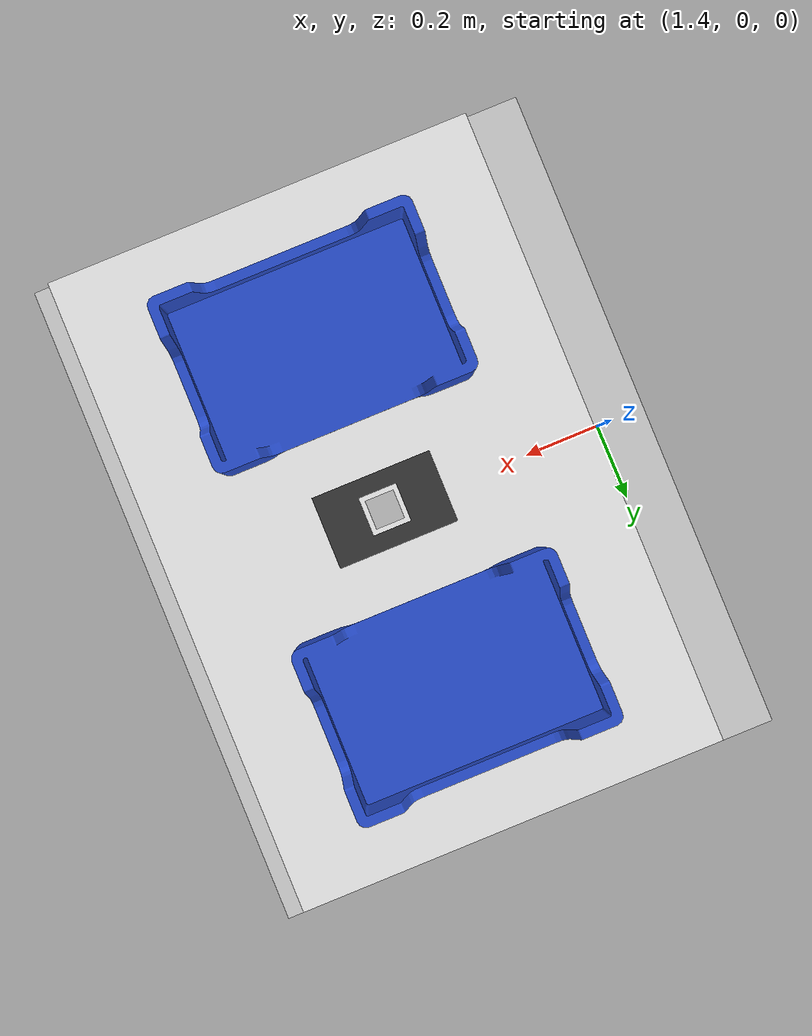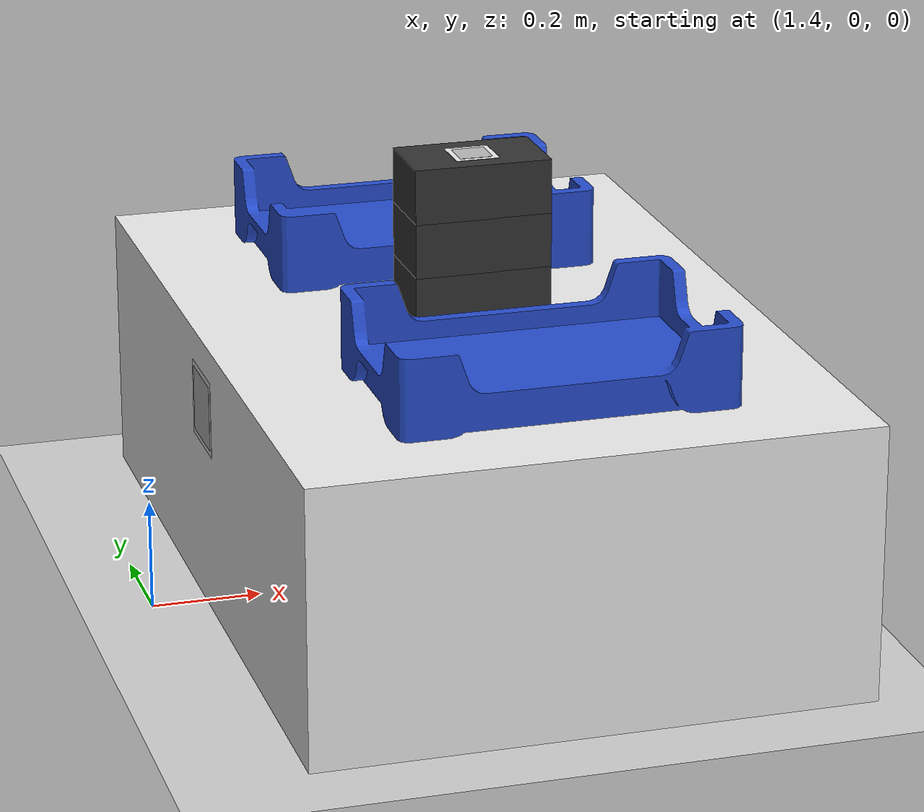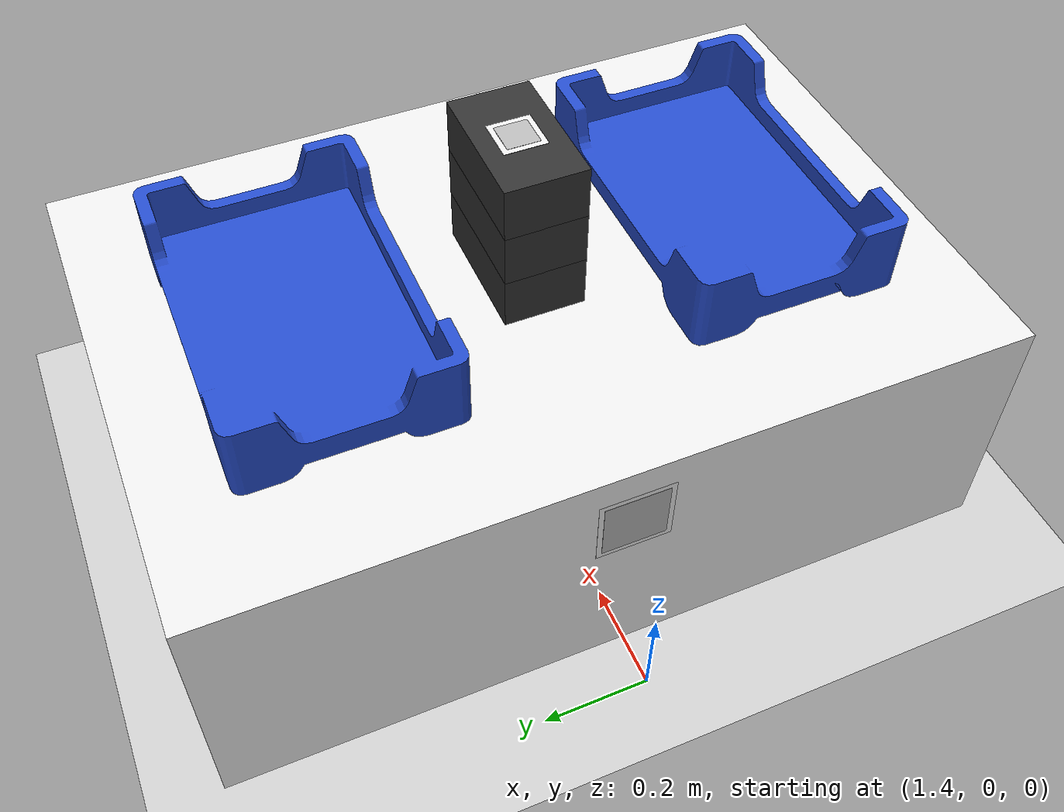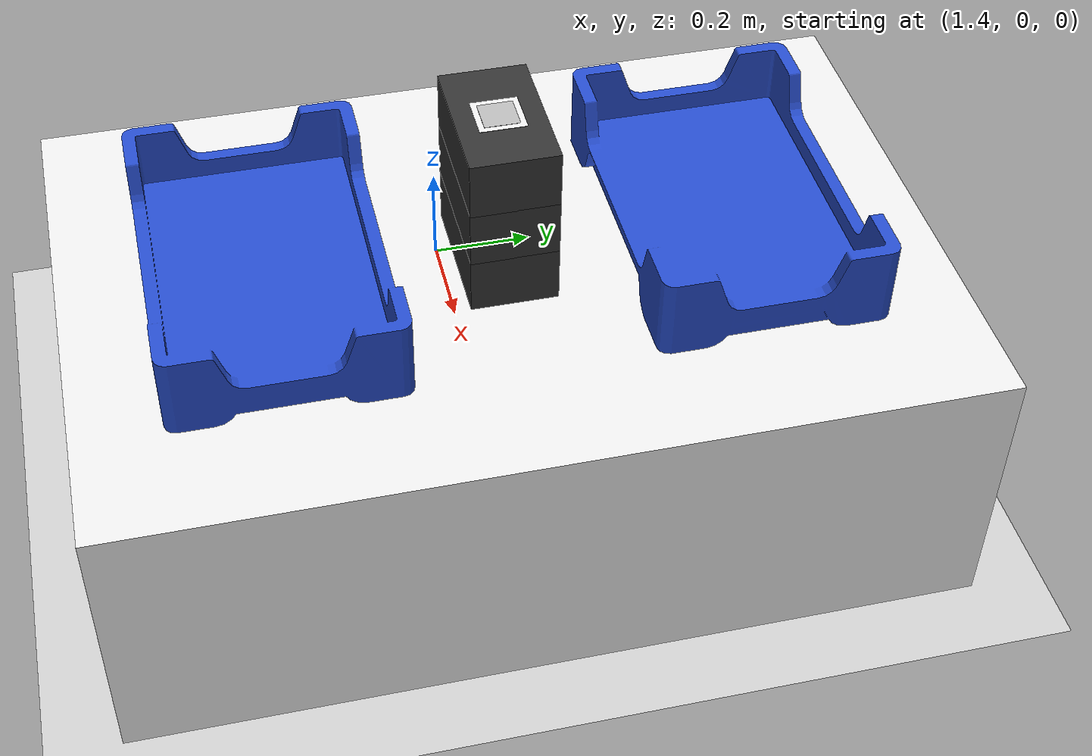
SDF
<sdf version="1.6">
 <world name="default">
  <plugin name="ros_link_attacher_plugin" filename="libgazebo_ros_link_attacher.so"/>
  <light name="sun" type="directional">
   <pose>0 0 10 0 -0 0</pose>
   <diffuse>0.8 0.8 0.8 1</diffuse>
   <specular>0.2 0.2 0.2 1</specular>
   <attenuation>
    <range>1000</range>
    <constant>0.9</constant>
    <linear>0.01</linear>
    <quadratic>0.001</quadratic>
   </attenuation>
   <direction>-0.5 0.1 -0.9</direction>
  </light>
  <model name="ground_plane">
   <static>1</static>
   <link name="link">
    <collision name="collision">
     <geometry><plane><normal>0 0 1</normal><size>100 100</size></plane></geometry>
     <surface>
      <contact><collide_bitmask>65535</collide_bitmask></contact>
      <friction><ode><mu>100</mu><mu2>50</mu2></ode></friction>
     </surface>
    </collision>
    <visual name="visual">
     <cast_shadows>0</cast_shadows>
     <geometry><plane><normal>0 0 1</normal><size>100 100</size></plane></geometry>
     <material>
      <script><uri>file://media/materials/scripts/gazebo.material</uri><name>Gazebo/Grey</name></script>
     </material>
    </visual>
   </link>
  </model>
  <gravity>0 0 -9.8</gravity>
  <magnetic_field>6e-06 2.3e-05 -4.2e-05</magnetic_field>
  <atmosphere type="adiabatic"/>
  <physics name="default_physics" default="0" type="ode">
   <max_step_size>0.001</max_step_size>
   <real_time_factor>1</real_time_factor>
   <real_time_update_rate>1000</real_time_update_rate>
  </physics>
  <scene><ambient>0.4 0.4 0.4 1</ambient><background>0.7 0.7 0.7 1</background><shadows>1</shadows></scene>
  <spherical_coordinates>
   <surface_model>EARTH_WGS84</surface_model>
   <latitude_deg>0</latitude_deg>
   <longitude_deg>0</longitude_deg>
   <elevation>0</elevation>
   <heading_deg>0</heading_deg>
  </spherical_coordinates>
  <model name="table">
   <link name="table_base_link">
    <inertial>
     <pose>-0 -0 0.25 0 -0 0</pose>
     <mass>200</mass>
     <inertia>
      <ixx>20.8333</ixx>
      <ixy>-3.3203e-15</ixy>
      <ixz>1.2006e-06</ixz>
      <iyy>54.1667</iyy>
      <iyz>7.96077e-16</iyz>
      <izz>41.6667</izz>
     </inertia>
    </inertial>
    <collision name="table_base_link_collision">
     <pose>0 0 0.25 0 -0 0</pose>
     <geometry><box><size>1 1.5 0.5</size></box></geometry>
     <surface>
      <contact><ode><kp>1e+07</kp><kd>1</kd></ode></contact>
      <friction><ode><mu>50</mu><mu2>50</mu2></ode></friction>
     </surface>
    </collision>
    <visual name="table_base_link_visual">
     <pose>0 0 0.25 0 -0 0</pose>
     <geometry><box><size>1 1.5 0.5</size></box></geometry>
     <material>
      <script><name>Gazebo/White</name><uri>file://media/materials/scripts/gazebo.material</uri></script>
     </material>
    </visual>
    <visual name="table_base_link_fixed_joint_lump__table_ar_tag_base_link_visual_1">
     <pose>-0.5 0 0.37 1.57079 -0 -1.57079</pose>
     <geometry><box><size>0.14 0.14 0.001</size></box></geometry>
     <material>
      <script><name>Gazebo/White</name><uri>file://media/materials/scripts/gazebo.material</uri></script>
     </material>
    </visual>
    <visual name="table_base_link_fixed_joint_lump__table_ar_tag_link_visual_2">
     <pose>-0.5005 -0 0.37 3.14159 -1.57079 -3.14159</pose>
     <geometry><box><size>0.12 0.12 0.001</size></box></geometry>
     <material>
      <script><name>ARtrack/marker10_12cm</name><uri>file://media/materials/scripts/gazebo.material</uri></script>
     </material>
    </visual>
   </link>
   <static>0</static>
   <plugin name="table_tf_publisher" filename="librobotnik_gazebo_ground_truth_odom.so">
    <alwaysOn>1</alwaysOn>
    <updateRate>50.0</updateRate>
    <bodyName>table_base_link</bodyName>
    <frameName>table_base_link_gt</frameName>
    <worldBodyName>world</worldBodyName>
    <worldFrameName>robot_map</worldFrameName>
    <topicName>table_tf</topicName>
    <gaussianNoise>0.01</gaussianNoise>
    <xyzOffsets>0 0 0</xyzOffsets>
    <rpyOffsets>0 0 0</rpyOffsets>
    <broadcastTF>1</broadcastTF>
    <robotNamespace>/</robotNamespace>
   </plugin>
   <pose>2 -0 -5.8e-05 -4e-06 -1e-06 0</pose>
  </model>
  <model name="box_3">
   <link name="box_3_base_link">
    <inertial>
     <pose>0 0 0.05 0 -0 0</pose>
     <mass>4.00002</mass>
     <inertia>
      <ixx>0.0333334</ixx>
      <ixy>-6.12201e-08</ixy>
      <ixz>0</ixz>
      <iyy>0.0166667</iyy>
      <iyz>0</iyz>
      <izz>0.0433334</izz>
     </inertia>
    </inertial>
    <collision name="box_3_base_link_fixed_joint_lump__box_body_box_link_collision">
     <pose>0 0 0.05 0 0 -1.5708</pose>
     <geometry><box><size>0.15 0.25 0.1</size></box></geometry>
     <surface>
      <contact><ode><kp>1e+07</kp><kd>1</kd><max_vel>0</max_vel><min_depth>0.001</min_depth></ode></contact>
      <friction><ode><mu>1</mu><mu2>1</mu2></ode></friction>
     </surface>
    </collision>
    <visual name="box_3_base_link_fixed_joint_lump__box_body_box_link_visual">
     <pose>0 0 0.05 0 0 -1.5708</pose>
     <geometry><box><size>0.15 0.25 0.1</size></box></geometry>
     <material>
      <ambient>0 0 0 1</ambient>
      <diffuse>0.2 0.2 0.2 1</diffuse>
      <specular>0.584314 0.647059 0.65098 1</specular>
      <emissive>0 0 0 0</emissive>
      <script><uri>__default__</uri><name>__default__</name></script>
     </material>
    </visual>
    <visual name="box_3_base_link_fixed_joint_lump__box_ar_tag_base_link_visual_1">
     <pose>0 0 0.1 0 0 -1.5708</pose>
     <geometry><box><size>0.08 0.08 0.001</size></box></geometry>
     <material>
      <script><name>Gazebo/White</name><uri>file://media/materials/scripts/gazebo.material</uri></script>
     </material>
    </visual>
    <visual name="box_3_base_link_fixed_joint_lump__box_ar_tag_link_visual_2">
     <pose>0 0 0.1005 0 0 -5e-06</pose>
     <geometry><box><size>0.06 0.06 0.001</size></box></geometry>
     <material>
      <script><name>ARtrack/marker7_6cm</name><uri>file://media/materials/scripts/gazebo.material</uri></script>
     </material>
    </visual>
   </link>
   <pose>2 0 0.697933 -5e-06 -4e-06 0.00013</pose>
  </model>
  <model name="box_2">
   <link name="box_2_base_link">
    <inertial>
     <pose>0 0 0.05 0 -0 0</pose>
     <mass>4.00002</mass>
     <inertia>
      <ixx>0.0333334</ixx>
      <ixy>-6.12201e-08</ixy>
      <ixz>0</ixz>
      <iyy>0.0166667</iyy>
      <iyz>0</iyz>
      <izz>0.0433334</izz>
     </inertia>
    </inertial>
    <collision name="box_2_base_link_fixed_joint_lump__box_body_box_link_collision">
     <pose>0 0 0.05 0 0 -1.5708</pose>
     <geometry><box><size>0.15 0.25 0.1</size></box></geometry>
     <surface>
      <contact><ode><kp>1e+07</kp><kd>1</kd><max_vel>0</max_vel><min_depth>0.001</min_depth></ode></contact>
      <friction><ode><mu>1</mu><mu2>1</mu2></ode></friction>
     </surface>
    </collision>
    <visual name="box_2_base_link_fixed_joint_lump__box_body_box_link_visual">
     <pose>0 0 0.05 0 0 -1.5708</pose>
     <geometry><box><size>0.15 0.25 0.1</size></box></geometry>
     <material>
      <ambient>0 0 0 1</ambient>
      <diffuse>0.2 0.2 0.2 1</diffuse>
      <specular>0.584314 0.647059 0.65098 1</specular>
      <emissive>0 0 0 0</emissive>
      <script><uri>__default__</uri><name>__default__</name></script>
     </material>
    </visual>
    <visual name="box_2_base_link_fixed_joint_lump__box_ar_tag_base_link_visual_1">
     <pose>0 0 0.1 0 0 -1.5708</pose>
     <geometry><box><size>0.08 0.08 0.001</size></box></geometry>
     <material>
      <script><name>Gazebo/White</name><uri>file://media/materials/scripts/gazebo.material</uri></script>
     </material>
    </visual>
    <visual name="box_2_base_link_fixed_joint_lump__box_ar_tag_link_visual_2">
     <pose>0 0 0.1005 0 0 -5e-06</pose>
     <geometry><box><size>0.06 0.06 0.001</size></box></geometry>
     <material>
      <script><name>ARtrack/marker8_6cm</name><uri>file://media/materials/scripts/gazebo.material</uri></script>
     </material>
    </visual>
   </link>
   <pose>2 0 0.598934 -6e-06 -3e-06 8.7e-05</pose>
  </model>
  <model name="box_1">
   <link name="box_1_base_link">
    <inertial>
     <pose>0 0 0.05 0 -0 0</pose>
     <mass>4.00002</mass>
     <inertia>
      <ixx>0.0333334</ixx>
      <ixy>-6.12201e-08</ixy>
      <ixz>0</ixz>
      <iyy>0.0166667</iyy>
      <iyz>0</iyz>
      <izz>0.0433334</izz>
     </inertia>
    </inertial>
    <collision name="box_1_base_link_fixed_joint_lump__box_body_box_link_collision">
     <pose>0 0 0.05 0 0 -1.5708</pose>
     <geometry><box><size>0.15 0.25 0.1</size></box></geometry>
     <surface>
      <contact><ode><kp>1e+07</kp><kd>1</kd><max_vel>0</max_vel><min_depth>0.001</min_depth></ode></contact>
      <friction><ode><mu>1</mu><mu2>1</mu2></ode></friction>
     </surface>
    </collision>
    <visual name="box_1_base_link_fixed_joint_lump__box_body_box_link_visual">
     <pose>0 0 0.05 0 0 -1.5708</pose>
     <geometry><box><size>0.15 0.25 0.1</size></box></geometry>
     <material>
      <ambient>0 0 0 1</ambient>
      <diffuse>0.2 0.2 0.2 1</diffuse>
      <specular>0.584314 0.647059 0.65098 1</specular>
      <emissive>0 0 0 0</emissive>
      <script><uri>__default__</uri><name>__default__</name></script>
     </material>
    </visual>
    <visual name="box_1_base_link_fixed_joint_lump__box_ar_tag_base_link_visual_1">
     <pose>0 0 0.1 0 0 -1.5708</pose>
     <geometry><box><size>0.08 0.08 0.001</size></box></geometry>
     <material>
      <script><name>Gazebo/White</name><uri>file://media/materials/scripts/gazebo.material</uri></script>
     </material>
    </visual>
    <visual name="box_1_base_link_fixed_joint_lump__box_ar_tag_link_visual_2">
     <pose>0 0 0.1005 0 0 -5e-06</pose>
     <geometry><box><size>0.06 0.06 0.001</size></box></geometry>
     <material>
      <script><name>ARtrack/marker9_6cm</name><uri>file://media/materials/scripts/gazebo.material</uri></script>
     </material>
    </visual>
   </link>
   <pose>2 1e-06 0.499936 -3e-06 -1e-06 2.9e-05</pose>
  </model>
  <model name="crate_1">
   <link name="crate_base_link">
    <inertial>
     <pose>0 0 0.07 0 -0 0</pose>
     <mass>10</mass>
     <inertia>
      <ixx>0.149667</ixx>
      <ixy>0</ixy>
      <ixz>0</ixz>
      <iyy>0.316333</iyy>
      <iyz>0</iyz>
      <izz>0.433333</izz>
     </inertia>
    </inertial>
    <collision name="crate_base_link_collision">
     <pose>0 0 0.07 0 -0 0</pose>
     <geometry>
      <mesh>
       <scale>1 1 1</scale>
       <uri>/home/maria/PROJECTS/ros_dev_ws/src/hrrecycler_component_sorting/component_sorting_description/meshes/crate.stl</uri>
      </mesh>
     </geometry>
     <max_contacts>5</max_contacts>
     <surface>
      <friction><ode><mu>100</mu><mu2>50</mu2></ode></friction>
      <contact>
       <collide_without_contact>0</collide_without_contact>
       <collide_without_contact_bitmask>1</collide_without_contact_bitmask>
       <collide_bitmask>1</collide_bitmask>
       <ode>
        <soft_cfm>0</soft_cfm>
        <soft_erp>0.2</soft_erp>
        <kp>1e+13</kp>
        <kd>1</kd>
        <max_vel>0</max_vel>
        <min_depth>0.001</min_depth>
       </ode>
      </contact>
     </surface>
    </collision>
    <visual name="crate_base_link_visual">
     <pose>0 0 0.07 0 -0 0</pose>
     <geometry>
      <mesh>
       <scale>1 1 1</scale>
       <uri>/home/maria/PROJECTS/ros_dev_ws/src/hrrecycler_component_sorting/component_sorting_description/meshes/crate.stl</uri>
      </mesh>
     </geometry>
     <material>
      <script><name>Gazebo/Blue</name><uri>file://media/materials/scripts/gazebo.material</uri></script>
     </material>
    </visual>
   </link>
   <static>0</static>
   <pose>2 0.4 0.502426 -2.9e-05 -4.4e-05 -7.9e-05</pose>
  </model>
  <model name="crate_2">
   <link name="crate_base_link">
    <inertial>
     <pose>0 0 0.07 0 -0 0</pose>
     <mass>10</mass>
     <inertia>
      <ixx>0.149667</ixx>
      <ixy>0</ixy>
      <ixz>0</ixz>
      <iyy>0.316333</iyy>
      <iyz>0</iyz>
      <izz>0.433333</izz>
     </inertia>
    </inertial>
    <collision name="crate_base_link_collision">
     <pose>0 0 0.07 0 -0 0</pose>
     <geometry>
      <mesh>
       <scale>1 1 1</scale>
       <uri>/home/maria/PROJECTS/ros_dev_ws/src/hrrecycler_component_sorting/component_sorting_description/meshes/crate.stl</uri>
      </mesh>
     </geometry>
     <max_contacts>5</max_contacts>
     <surface>
      <friction><ode><mu>100</mu><mu2>50</mu2></ode></friction>
      <contact>
       <collide_without_contact>0</collide_without_contact>
       <collide_without_contact_bitmask>1</collide_without_contact_bitmask>
       <collide_bitmask>1</collide_bitmask>
       <ode>
        <soft_cfm>0</soft_cfm>
        <soft_erp>0.2</soft_erp>
        <kp>1e+13</kp>
        <kd>1</kd>
        <max_vel>0</max_vel>
        <min_depth>0.001</min_depth>
       </ode>
      </contact>
     </surface>
    </collision>
    <visual name="crate_base_link_visual">
     <pose>0 0 0.07 0 -0 0</pose>
     <geometry>
      <mesh>
       <scale>1 1 1</scale>
       <uri>/home/maria/PROJECTS/ros_dev_ws/src/hrrecycler_component_sorting/component_sorting_description/meshes/crate.stl</uri>
      </mesh>
     </geometry>
     <material>
      <script><name>Gazebo/Blue</name><uri>file://media/materials/scripts/gazebo.material</uri></script>
     </material>
    </visual>
   </link>
   <static>0</static>
   <pose>2 -0.4 0.502426 0.000373 0 -9.5e-05</pose>
  </model>
 </world>
</sdf>
